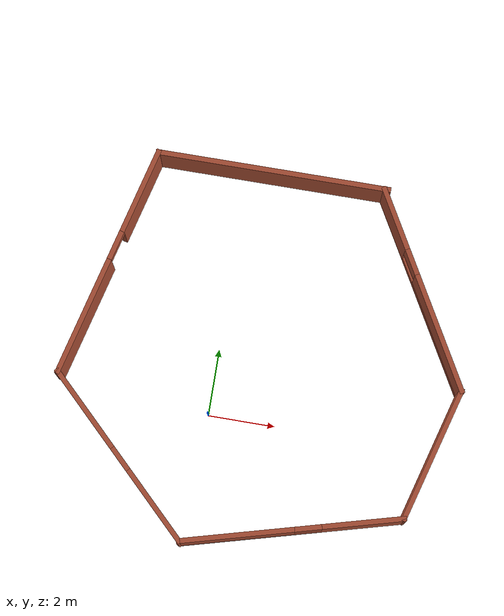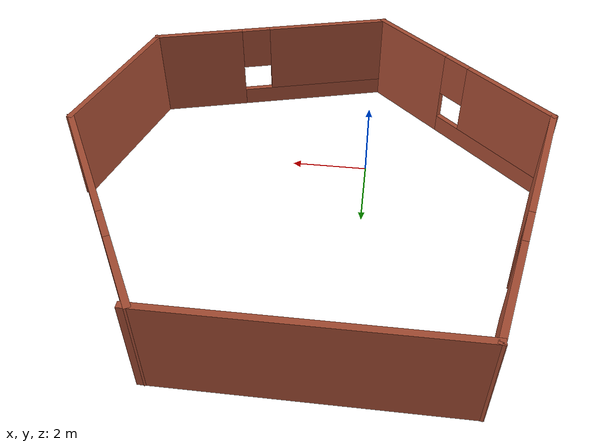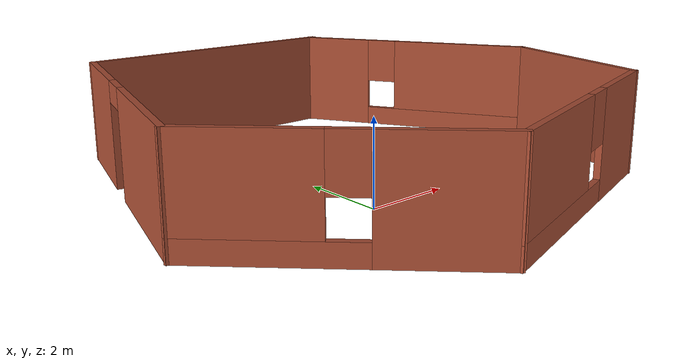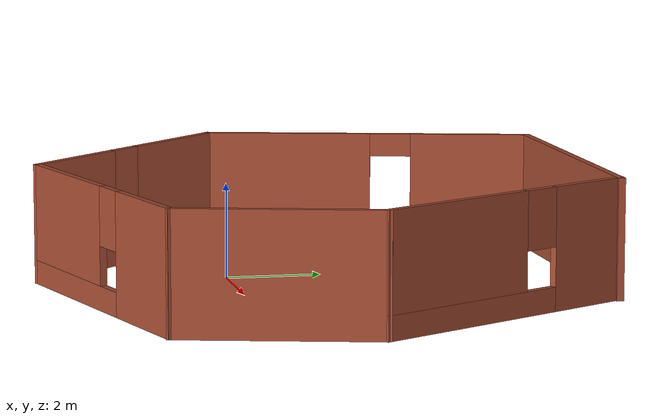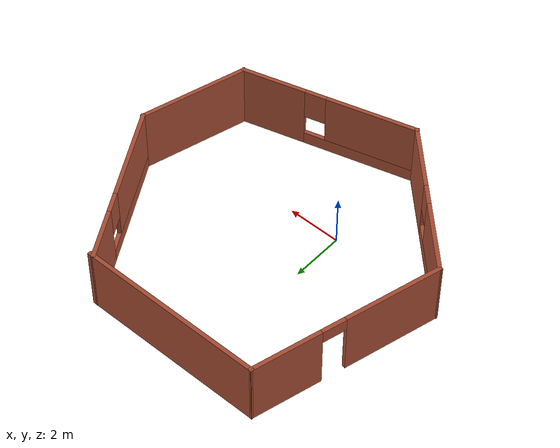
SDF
<?xml version='1.0'?>
<sdf version='1.7'>
  <model name='test.world'>
    <pose>1.37055 1.68113 0 0 -0 0</pose>
    <link name='Wall_4'>
      <pose>4.28912 2.83606 0 0 -0 -1.0472</pose>
      <visual name='Wall_4_Visual_0'>
        <pose>-2.26515 0 1.25 0 -0 0</pose>
        <geometry>
          <box>
            <size>1.96969 0.15 2.5</size>
          </box>
        </geometry>
        <material>
          <script>
            <uri>file://media/materials/scripts/gazebo.material</uri>
            <name>Gazebo/Bricks</name>
          </script>
          <ambient>1 1 1 1</ambient>
        </material>
        <meta>
          <layer>0</layer>
        </meta>
      </visual>
      <collision name='Wall_4_Collision_0'>
        <geometry>
          <box>
            <size>1.96969 0.15 2.5</size>
          </box>
        </geometry>
        <pose>-2.26515 0 1.25 0 -0 0</pose>
      </collision>
      <visual name='Wall_4_Visual_1'>
        <pose>0.984846 0 0.25 0 -0 0</pose>
        <geometry>
          <box>
            <size>4.53031 0.15 0.5</size>
          </box>
        </geometry>
        <material>
          <script>
            <uri>file://media/materials/scripts/gazebo.material</uri>
            <name>Gazebo/Bricks</name>
          </script>
          <ambient>1 1 1 1</ambient>
        </material>
        <meta>
          <layer>0</layer>
        </meta>
      </visual>
      <collision name='Wall_4_Collision_1'>
        <geometry>
          <box>
            <size>4.53031 0.15 0.5</size>
          </box>
        </geometry>
        <pose>0.984846 0 0.25 0 -0 0</pose>
      </collision>
      <visual name='Wall_4_Visual_2'>
        <pose>1.38485 0 1.5 0 -0 0</pose>
        <geometry>
          <box>
            <size>3.73031 0.15 2</size>
          </box>
        </geometry>
        <material>
          <script>
            <uri>file://media/materials/scripts/gazebo.material</uri>
            <name>Gazebo/Bricks</name>
          </script>
          <ambient>1 1 1 1</ambient>
        </material>
        <meta>
          <layer>0</layer>
        </meta>
      </visual>
      <collision name='Wall_4_Collision_2'>
        <geometry>
          <box>
            <size>3.73031 0.15 2</size>
          </box>
        </geometry>
        <pose>1.38485 0 1.5 0 -0 0</pose>
      </collision>
      <visual name='Wall_4_Visual_3'>
        <pose>-0.880308 0 1.9 0 -0 0</pose>
        <geometry>
          <box>
            <size>0.8 0.15 1.2</size>
          </box>
        </geometry>
        <material>
          <script>
            <uri>file://media/materials/scripts/gazebo.material</uri>
            <name>Gazebo/Bricks</name>
          </script>
          <ambient>1 1 1 1</ambient>
        </material>
        <meta>
          <layer>0</layer>
        </meta>
      </visual>
      <collision name='Wall_4_Collision_3'>
        <geometry>
          <box>
            <size>0.8 0.15 1.2</size>
          </box>
        </geometry>
        <pose>-0.880308 0 1.9 0 -0 0</pose>
      </collision>
    </link>
    <link name='Wall_5'>
      <collision name='Wall_5_Collision'>
        <geometry>
          <box>
            <size>4.25 0.15 2.5</size>
          </box>
        </geometry>
        <pose>0 0 1.25 0 -0 0</pose>
      </collision>
      <visual name='Wall_5_Visual'>
        <pose>0 0 1.25 0 -0 0</pose>
        <geometry>
          <box>
            <size>4.25 0.15 2.5</size>
          </box>
        </geometry>
        <material>
          <script>
            <uri>file://media/materials/scripts/gazebo.material</uri>
            <name>Gazebo/Bricks</name>
          </script>
          <ambient>1 1 1 1</ambient>
        </material>
        <meta>
          <layer>0</layer>
        </meta>
      </visual>
      <pose>5.34604 -1.89372 0 0 -0 -1.8326</pose>
    </link>
    <link name='Wall_6'>
      <pose>1.6279 -4.72797 0 0 -0 -2.87979</pose>
      <visual name='Wall_6_Visual_0'>
        <pose>-2.13292 0 1.25 0 -0 0</pose>
        <geometry>
          <box>
            <size>2.48415 0.15 2.5</size>
          </box>
        </geometry>
        <material>
          <script>
            <uri>file://media/materials/scripts/gazebo.material</uri>
            <name>Gazebo/Bricks</name>
          </script>
          <ambient>1 1 1 1</ambient>
        </material>
        <meta>
          <layer>0</layer>
        </meta>
      </visual>
      <collision name='Wall_6_Collision_0'>
        <geometry>
          <box>
            <size>2.48415 0.15 2.5</size>
          </box>
        </geometry>
        <pose>-2.13292 0 1.25 0 -0 0</pose>
      </collision>
      <visual name='Wall_6_Visual_1'>
        <pose>1.24208 0 0.25 0 -0 0</pose>
        <geometry>
          <box>
            <size>4.26585 0.15 0.5</size>
          </box>
        </geometry>
        <material>
          <script>
            <uri>file://media/materials/scripts/gazebo.material</uri>
            <name>Gazebo/Bricks</name>
          </script>
          <ambient>1 1 1 1</ambient>
        </material>
        <meta>
          <layer>0</layer>
        </meta>
      </visual>
      <collision name='Wall_6_Collision_1'>
        <geometry>
          <box>
            <size>4.26585 0.15 0.5</size>
          </box>
        </geometry>
        <pose>1.24208 0 0.25 0 -0 0</pose>
      </collision>
      <visual name='Wall_6_Visual_2'>
        <pose>1.64208 0 1.5 0 -0 0</pose>
        <geometry>
          <box>
            <size>3.46585 0.15 2</size>
          </box>
        </geometry>
        <material>
          <script>
            <uri>file://media/materials/scripts/gazebo.material</uri>
            <name>Gazebo/Bricks</name>
          </script>
          <ambient>1 1 1 1</ambient>
        </material>
        <meta>
          <layer>0</layer>
        </meta>
      </visual>
      <collision name='Wall_6_Collision_2'>
        <geometry>
          <box>
            <size>3.46585 0.15 2</size>
          </box>
        </geometry>
        <pose>1.64208 0 1.5 0 -0 0</pose>
      </collision>
      <visual name='Wall_6_Visual_3'>
        <pose>-0.490847 0 1.9 0 -0 0</pose>
        <geometry>
          <box>
            <size>0.8 0.15 1.2</size>
          </box>
        </geometry>
        <material>
          <script>
            <uri>file://media/materials/scripts/gazebo.material</uri>
            <name>Gazebo/Bricks</name>
          </script>
          <ambient>1 1 1 1</ambient>
        </material>
        <meta>
          <layer>0</layer>
        </meta>
      </visual>
      <collision name='Wall_6_Collision_3'>
        <geometry>
          <box>
            <size>0.8 0.15 1.2</size>
          </box>
        </geometry>
        <pose>-0.490847 0 1.9 0 -0 0</pose>
      </collision>
    </link>
    <link name='Wall_7'>
      <pose>-3.71633 -3.4254 0 0 -0 2.35619</pose>
      <visual name='Wall_7_Visual_0'>
        <pose>-1.81582 0 1.25 0 -0 0</pose>
        <geometry>
          <box>
            <size>2.61837 0.15 2.5</size>
          </box>
        </geometry>
        <material>
          <script>
            <uri>file://media/materials/scripts/gazebo.material</uri>
            <name>Gazebo/Bricks</name>
          </script>
          <ambient>1 1 1 1</ambient>
        </material>
        <meta>
          <layer>0</layer>
        </meta>
      </visual>
      <collision name='Wall_7_Collision_0'>
        <geometry>
          <box>
            <size>2.61837 0.15 2.5</size>
          </box>
        </geometry>
        <pose>-1.81582 0 1.25 0 -0 0</pose>
      </collision>
      <visual name='Wall_7_Visual_1'>
        <pose>1.30918 0 0.25 0 -0 0</pose>
        <geometry>
          <box>
            <size>3.63163 0.15 0.5</size>
          </box>
        </geometry>
        <material>
          <script>
            <uri>file://media/materials/scripts/gazebo.material</uri>
            <name>Gazebo/Bricks</name>
          </script>
          <ambient>1 1 1 1</ambient>
        </material>
        <meta>
          <layer>0</layer>
        </meta>
      </visual>
      <collision name='Wall_7_Collision_1'>
        <geometry>
          <box>
            <size>3.63163 0.15 0.5</size>
          </box>
        </geometry>
        <pose>1.30918 0 0.25 0 -0 0</pose>
      </collision>
      <visual name='Wall_7_Visual_2'>
        <pose>1.70918 0 1.5 0 -0 0</pose>
        <geometry>
          <box>
            <size>2.83163 0.15 2</size>
          </box>
        </geometry>
        <material>
          <script>
            <uri>file://media/materials/scripts/gazebo.material</uri>
            <name>Gazebo/Bricks</name>
          </script>
          <ambient>1 1 1 1</ambient>
        </material>
        <meta>
          <layer>0</layer>
        </meta>
      </visual>
      <collision name='Wall_7_Collision_2'>
        <geometry>
          <box>
            <size>2.83163 0.15 2</size>
          </box>
        </geometry>
        <pose>1.70918 0 1.5 0 -0 0</pose>
      </collision>
      <visual name='Wall_7_Visual_3'>
        <pose>-0.106632 0 1.9 0 -0 0</pose>
        <geometry>
          <box>
            <size>0.8 0.15 1.2</size>
          </box>
        </geometry>
        <material>
          <script>
            <uri>file://media/materials/scripts/gazebo.material</uri>
            <name>Gazebo/Bricks</name>
          </script>
          <ambient>1 1 1 1</ambient>
        </material>
        <meta>
          <layer>0</layer>
        </meta>
      </visual>
      <collision name='Wall_7_Collision_3'>
        <geometry>
          <box>
            <size>0.8 0.15 1.2</size>
          </box>
        </geometry>
        <pose>-0.106632 0 1.9 0 -0 0</pose>
      </collision>
    </link>
    <link name='Wall_8'>
      <pose>-4.9542 2.16031 0 0 -0 1.309</pose>
      <visual name='Wall_8_Visual_0'>
        <pose>-1.77806 0 1.25 0 -0 0</pose>
        <geometry>
          <box>
            <size>3.69389 0.15 2.5</size>
          </box>
        </geometry>
        <material>
          <script>
            <uri>file://media/materials/scripts/gazebo.material</uri>
            <name>Gazebo/Bricks</name>
          </script>
          <ambient>1 1 1 1</ambient>
        </material>
        <meta>
          <layer>0</layer>
        </meta>
      </visual>
      <collision name='Wall_8_Collision_0'>
        <geometry>
          <box>
            <size>3.69389 0.15 2.5</size>
          </box>
        </geometry>
        <pose>-1.77806 0 1.25 0 -0 0</pose>
      </collision>
      <visual name='Wall_8_Visual_1'>
        <pose>2.29694 0 1.25 0 -0 0</pose>
        <geometry>
          <box>
            <size>2.65611 0.15 2.5</size>
          </box>
        </geometry>
        <material>
          <script>
            <uri>file://media/materials/scripts/gazebo.material</uri>
            <name>Gazebo/Bricks</name>
          </script>
          <ambient>1 1 1 1</ambient>
        </material>
        <meta>
          <layer>0</layer>
        </meta>
      </visual>
      <collision name='Wall_8_Collision_1'>
        <geometry>
          <box>
            <size>2.65611 0.15 2.5</size>
          </box>
        </geometry>
        <pose>2.29694 0 1.25 0 -0 0</pose>
      </collision>
      <visual name='Wall_8_Visual_2'>
        <pose>0.518886 0 2.25 0 -0 0</pose>
        <geometry>
          <box>
            <size>0.9 0.15 0.5</size>
          </box>
        </geometry>
        <material>
          <script>
            <uri>file://media/materials/scripts/gazebo.material</uri>
            <name>Gazebo/Bricks</name>
          </script>
          <ambient>1 1 1 1</ambient>
        </material>
        <meta>
          <layer>0</layer>
        </meta>
      </visual>
      <collision name='Wall_8_Collision_2'>
        <geometry>
          <box>
            <size>0.9 0.15 0.5</size>
          </box>
        </geometry>
        <pose>0.518886 0 2.25 0 -0 0</pose>
      </collision>
    </link>
    <link name='Wall_9'>
      <collision name='Wall_9_Collision'>
        <geometry>
          <box>
            <size>7 0.15 2.5</size>
          </box>
        </geometry>
        <pose>0 0 1.25 0 -0 0</pose>
      </collision>
      <visual name='Wall_9_Visual'>
        <pose>0 0 1.25 0 -0 0</pose>
        <geometry>
          <box>
            <size>7 0.15 2.5</size>
          </box>
        </geometry>
        <material>
          <script>
            <uri>file://media/materials/scripts/gazebo.material</uri>
            <name>Gazebo/Bricks</name>
          </script>
          <ambient>1 1 1 1</ambient>
        </material>
        <meta>
          <layer>0</layer>
        </meta>
      </visual>
      <pose>-0.610387 5.58935 0 0 -0 0</pose>
    </link>
    <static>1</static>
  </model>
</sdf>
